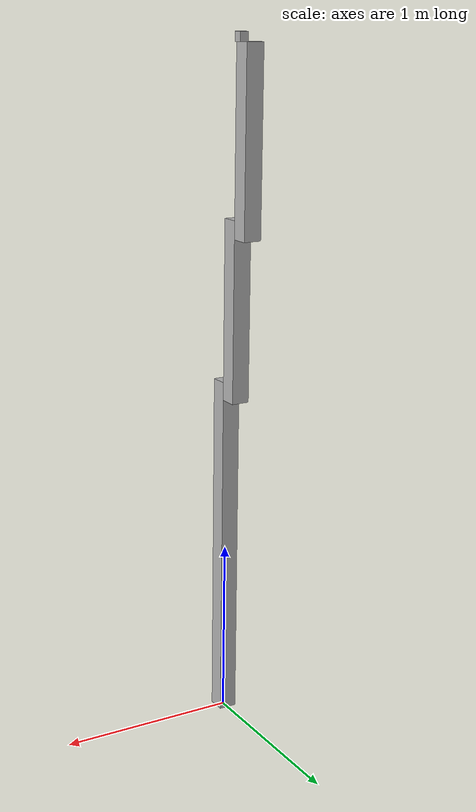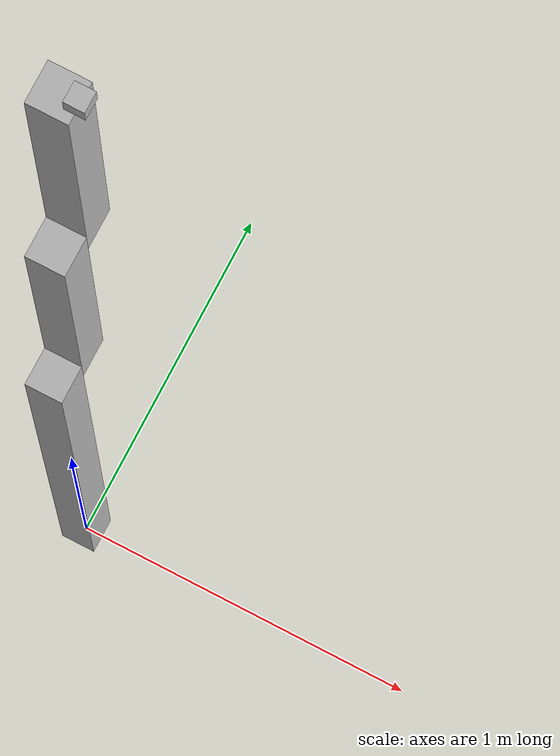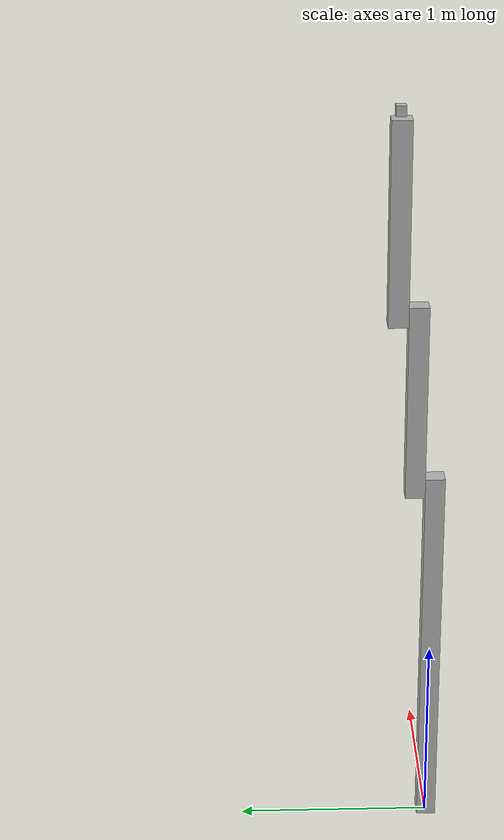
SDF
<sdf version='1.7'>
  <model name='cambot'>
    <joint name="fixedGnd" type="fixed">
      <parent>world</parent>
      <child>base</child>
    </joint>
    <link name='base'>
      <inertial>
        <pose>0 0 1 0 -0 0</pose>
        <mass>1</mass>
        <inertia>
          <ixx>1</ixx>
          <ixy>0</ixy>
          <ixz>0</ixz>
          <iyy>1</iyy>
          <iyz>0</iyz>
          <izz>1</izz>
        </inertia>
      </inertial>
      <collision name='base_fixed_joint_lump__link1_collision'>
        <pose>0 0 1 0 -0 0</pose>
        <geometry>
          <box>
            <size>0.1 0.1 2</size>
          </box>
        </geometry>
      </collision>
      <visual name='base_fixed_joint_lump__link1_visual'>
        <pose>0 0 1 0 -0 0</pose>
        <geometry>
          <box>
            <size>0.1 0.1 2</size>
          </box>
        </geometry>
      </visual>
    </link>
    <joint name='joint1' type='revolute'>
      <pose relative_to='base'>0 0.1 1.95 0 -0 0</pose>
      <parent>base</parent>
      <child>link2</child>
      <axis>
        <xyz>0 1 0</xyz>
        <limit>
          <lower>-1e+16</lower>
          <upper>1e+16</upper>
        </limit>
        <dynamics>
          <damping>0.7</damping>
          <friction>0</friction>
          <spring_reference>0</spring_reference>
          <spring_stiffness>0</spring_stiffness>
        </dynamics>
      </axis>
    </joint>
    <link name='link2'>
      <pose relative_to='joint1'>0 0 0 0 -0 0</pose>
      <inertial>
        <pose>0 0 0.45 0 -0 0</pose>
        <mass>1</mass>
        <inertia>
          <ixx>1</ixx>
          <ixy>0</ixy>
          <ixz>0</ixz>
          <iyy>1</iyy>
          <iyz>0</iyz>
          <izz>1</izz>
        </inertia>
      </inertial>
      <collision name='link2_collision'>
        <pose>0 0 0.45 0 -0 0</pose>
        <geometry>
          <box>
            <size>0.1 0.1 1</size>
          </box>
        </geometry>
      </collision>
      <visual name='link2_visual'>
        <pose>0 0 0.45 0 -0 0</pose>
        <geometry>
          <box>
            <size>0.1 0.1 1</size>
          </box>
        </geometry>
      </visual>
    </link>
    <joint name='joint2' type='revolute'>
      <pose relative_to='link2'>0 0.1 0.9 0 -0 0</pose>
      <parent>link2</parent>
      <child>link3</child>
      <axis>
        <xyz>0 1 0</xyz>
        <limit>
          <lower>-1e+16</lower>
          <upper>1e+16</upper>
        </limit>
        <dynamics>
          <damping>0.7</damping>
          <friction>0</friction>
          <spring_reference>0</spring_reference>
          <spring_stiffness>0</spring_stiffness>
        </dynamics>
      </axis>
    </joint>
    <link name='link3'>
      <pose relative_to='joint2'>0 0 0 0 -0 0</pose>
      <inertial>
        <pose>0 0 0.450005 0 -0 0</pose>
        <mass>1.00001</mass>
        <inertia>
          <ixx>1</ixx>
          <ixy>0</ixy>
          <ixz>-2.62497e-07</ixz>
          <iyy>1</iyy>
          <iyz>0</iyz>
          <izz>1</izz>
        </inertia>
      </inertial>
      <collision name='link3_collision'>
        <pose>0 0 0.45 0 -0 0</pose>
        <geometry>
          <box>
            <size>0.1 0.1 1</size>
          </box>
        </geometry>
      </collision>
      <collision name='link3_fixed_joint_lump__camera_link_collision_1'>
        <pose>0.05 0 0.975 0 -0 0</pose>
        <geometry>
          <box>
            <size>0.05 0.05 0.05</size>
          </box>
        </geometry>
      </collision>
      <visual name='link3_visual'>
        <pose>0 0 0.45 0 -0 0</pose>
        <geometry>
          <box>
            <size>0.1 0.1 1</size>
          </box>
        </geometry>
      </visual>
      <visual name='link3_fixed_joint_lump__camera_link_visual_1'>
        <pose>0.05 0 0.975 0 -0 0</pose>
        <geometry>
          <box>
            <size>0.05 0.05 0.05</size>
          </box>
        </geometry>
      </visual>
      <sensor type="camera" name="camera1">
        <update_rate>30.0</update_rate>
        <camera name="head">
          <horizontal_fov>1.3962634</horizontal_fov>
          <image>
            <width>800</width>
            <height>800</height>
            <format>R8G8B8</format>
          </image>
          <clip>
            <near>0.02</near>
            <far>300</far>
          </clip>
          <noise>
            <type>gaussian</type>
            <mean>0.0</mean>
            <stddev>0.007</stddev>
          </noise>
        </camera>
        <plugin name="camera_controller" filename="libgazebo_ros_camera.so">
          <alwaysOn>true</alwaysOn>
          <updateRate>0.0</updateRate>
          <cameraName>cambot/camera1</cameraName>
          <imageTopicName>image_raw</imageTopicName>
          <cameraInfoTopicName>camera_info</cameraInfoTopicName>
          <frameName>camera_link</frameName>
          <hackBaseline>0.07</hackBaseline>
          <distortionK1>0.0</distortionK1>
          <distortionK2>0.0</distortionK2>
          <distortionK3>0.0</distortionK3>
          <distortionT1>0.0</distortionT1>
          <distortionT2>0.0</distortionT2>
        </plugin>
      </sensor>
    </link>
  </model>
</sdf>
